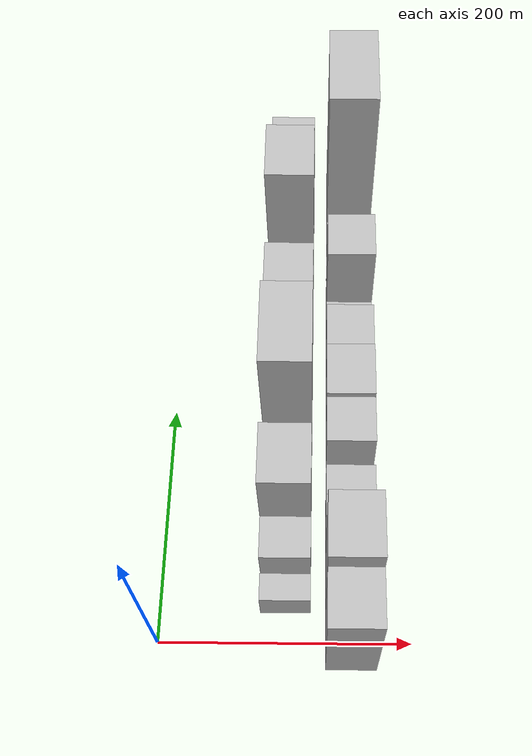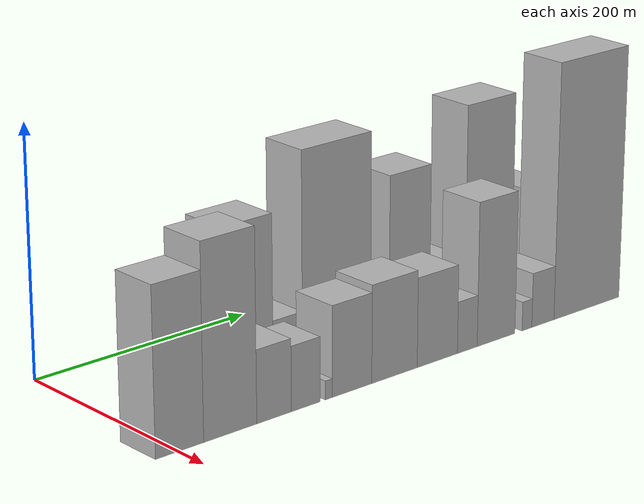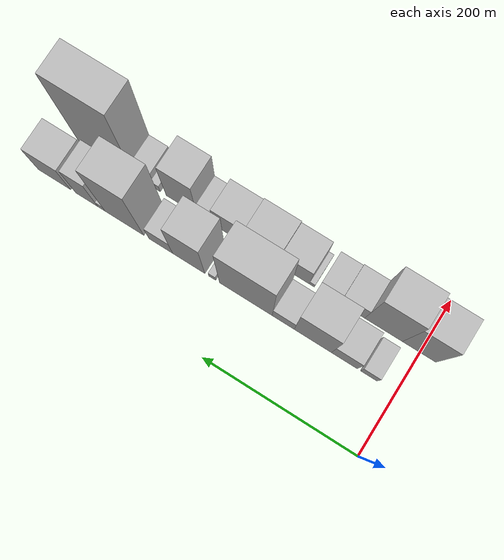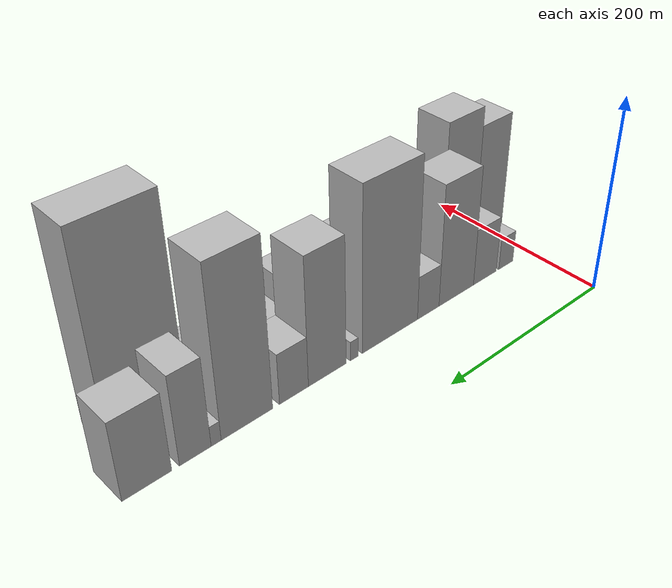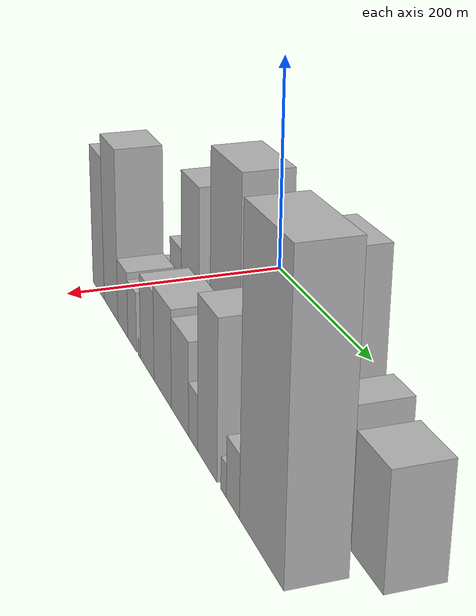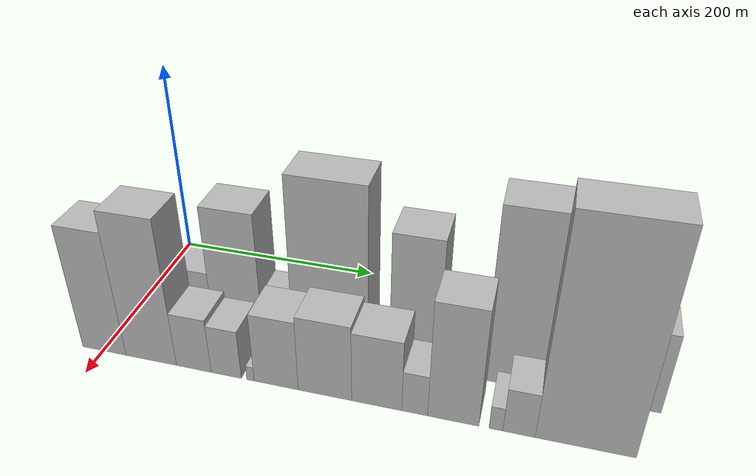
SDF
<sdf version="1.6">
 <world name="default">
  <model name="building_13">
   <static>1</static>
   <pose>100.0000 34.5965 0 0.000000 0.000000 0.000000</pose>
   <link name="link">
    <pose>0 0 18.00 0 0 0</pose>
    <collision name="collision"><geometry><box><size>40.0000 21.2553 36.0000</size></box></geometry></collision>
    <visual name="visual">
     <cast_shadows>0</cast_shadows>
     <geometry><box><size>40.0000 21.2553 36.0000</size></box></geometry>
     <material>
      <script>
       <uri>model://HANNAS_wall/materials/scripts</uri>
       <uri>model://HANNAS_wall/materials/textures</uri>
       <name>vrc/HANNAS_wall</name>
      </script>
     </material>
    </visual>
   </link>
  </model>
  <model name="building_14">
   <static>1</static>
   <pose>100.0000 65.7811 0 0.000000 0.000000 0.000000</pose>
   <link name="link">
    <pose>0 0 31.50 0 0 0</pose>
    <collision name="collision"><geometry><box><size>40.0000 33.1139 63.0000</size></box></geometry></collision>
    <visual name="visual">
     <cast_shadows>0</cast_shadows>
     <geometry><box><size>40.0000 33.1139 63.0000</size></box></geometry>
     <material>
      <script>
       <uri>model://HANNAS_wall/materials/scripts</uri>
       <uri>model://HANNAS_wall/materials/textures</uri>
       <name>vrc/HANNAS_wall</name>
      </script>
     </material>
    </visual>
   </link>
  </model>
  <model name="building_15">
   <static>1</static>
   <pose>100.0000 106.3190 0 0.000000 0.000000 0.000000</pose>
   <link name="link">
    <pose>0 0 66.00 0 0 0</pose>
    <collision name="collision"><geometry><box><size>40.0000 47.9619 132.0000</size></box></geometry></collision>
    <visual name="visual">
     <cast_shadows>0</cast_shadows>
     <geometry><box><size>40.0000 47.9619 132.0000</size></box></geometry>
     <material>
      <script>
       <uri>model://HANNAS_wall/materials/scripts</uri>
       <uri>model://HANNAS_wall/materials/textures</uri>
       <name>vrc/HANNAS_wall</name>
      </script>
     </material>
    </visual>
   </link>
  </model>
  <model name="building_16">
   <static>1</static>
   <pose>100.0000 144.6355 0 0.000000 0.000000 0.000000</pose>
   <link name="link">
    <pose>0 0 24.00 0 0 0</pose>
    <collision name="collision"><geometry><box><size>40.0000 28.6711 48.0000</size></box></geometry></collision>
    <visual name="visual">
     <cast_shadows>0</cast_shadows>
     <geometry><box><size>40.0000 28.6711 48.0000</size></box></geometry>
     <material>
      <script>
       <uri>model://HANNAS_wall/materials/scripts</uri>
       <uri>model://HANNAS_wall/materials/textures</uri>
       <name>vrc/HANNAS_wall</name>
      </script>
     </material>
    </visual>
   </link>
  </model>
  <model name="building_17">
   <static>1</static>
   <pose>100.0000 193.4795 0 0.000000 0.000000 0.000000</pose>
   <link name="link">
    <pose>0 0 87.00 0 0 0</pose>
    <collision name="collision"><geometry><box><size>40.0000 69.0169 174.0000</size></box></geometry></collision>
    <visual name="visual">
     <cast_shadows>0</cast_shadows>
     <geometry><box><size>40.0000 69.0169 174.0000</size></box></geometry>
     <material>
      <script>
       <uri>model://HANNAS_wall/materials/scripts</uri>
       <uri>model://HANNAS_wall/materials/textures</uri>
       <name>vrc/HANNAS_wall</name>
      </script>
     </material>
    </visual>
   </link>
  </model>
  <model name="building_18">
   <static>1</static>
   <pose>100.0000 237.6015 0 0.000000 0.000000 0.000000</pose>
   <link name="link">
    <pose>0 0 10.50 0 0 0</pose>
    <collision name="collision"><geometry><box><size>40.0000 9.2270 21.0000</size></box></geometry></collision>
    <visual name="visual">
     <cast_shadows>0</cast_shadows>
     <geometry><box><size>40.0000 9.2270 21.0000</size></box></geometry>
     <material>
      <script>
       <uri>model://HANNAS_wall/materials/scripts</uri>
       <uri>model://HANNAS_wall/materials/textures</uri>
       <name>vrc/HANNAS_wall</name>
      </script>
     </material>
    </visual>
   </link>
  </model>
  <model name="building_19">
   <static>1</static>
   <pose>100.0000 268.6588 0 0.000000 0.000000 0.000000</pose>
   <link name="link">
    <pose>0 0 67.50 0 0 0</pose>
    <collision name="collision"><geometry><box><size>40.0000 42.8875 135.0000</size></box></geometry></collision>
    <visual name="visual">
     <cast_shadows>0</cast_shadows>
     <geometry><box><size>40.0000 42.8875 135.0000</size></box></geometry>
     <material>
      <script>
       <uri>model://HANNAS_wall/materials/scripts</uri>
       <uri>model://HANNAS_wall/materials/textures</uri>
       <name>vrc/HANNAS_wall</name>
      </script>
     </material>
    </visual>
   </link>
  </model>
  <model name="building_20">
   <static>1</static>
   <pose>100.0000 305.8284 0 0.000000 0.000000 0.000000</pose>
   <link name="link">
    <pose>0 0 27.00 0 0 0</pose>
    <collision name="collision"><geometry><box><size>40.0000 31.4517 54.0000</size></box></geometry></collision>
    <visual name="visual">
     <cast_shadows>0</cast_shadows>
     <geometry><box><size>40.0000 31.4517 54.0000</size></box></geometry>
     <material>
      <script>
       <uri>model://HANNAS_wall/materials/scripts</uri>
       <uri>model://HANNAS_wall/materials/textures</uri>
       <name>vrc/HANNAS_wall</name>
      </script>
     </material>
    </visual>
   </link>
  </model>
  <model name="building_21">
   <static>1</static>
   <pose>100.0000 354.7186 0 0.000000 0.000000 0.000000</pose>
   <link name="link">
    <pose>0 0 87.00 0 0 0</pose>
    <collision name="collision"><geometry><box><size>40.0000 52.3286 174.0000</size></box></geometry></collision>
    <visual name="visual">
     <cast_shadows>0</cast_shadows>
     <geometry><box><size>40.0000 52.3286 174.0000</size></box></geometry>
     <material>
      <script>
       <uri>model://HANNAS_wall/materials/scripts</uri>
       <uri>model://HANNAS_wall/materials/textures</uri>
       <name>vrc/HANNAS_wall</name>
      </script>
     </material>
    </visual>
   </link>
  </model>
  <model name="building_22">
   <static>1</static>
   <pose>100.0000 385.7405 0 0.000000 0.000000 0.000000</pose>
   <link name="link">
    <pose>0 0 10.50 0 0 0</pose>
    <collision name="collision"><geometry><box><size>40.0000 9.7152 21.0000</size></box></geometry></collision>
    <visual name="visual">
     <cast_shadows>0</cast_shadows>
     <geometry><box><size>40.0000 9.7152 21.0000</size></box></geometry>
     <material>
      <script>
       <uri>model://HANNAS_wall/materials/scripts</uri>
       <uri>model://HANNAS_wall/materials/textures</uri>
       <name>vrc/HANNAS_wall</name>
      </script>
     </material>
    </visual>
   </link>
  </model>
  <model name="building_23">
   <static>1</static>
   <pose>100.0000 405.5661 0 0.000000 0.000000 0.000000</pose>
   <link name="link">
    <pose>0 0 46.50 0 0 0</pose>
    <collision name="collision"><geometry><box><size>40.0000 29.9361 93.0000</size></box></geometry></collision>
    <visual name="visual">
     <cast_shadows>0</cast_shadows>
     <geometry><box><size>40.0000 29.9361 93.0000</size></box></geometry>
     <material>
      <script>
       <uri>model://HANNAS_wall/materials/scripts</uri>
       <uri>model://HANNAS_wall/materials/textures</uri>
       <name>vrc/HANNAS_wall</name>
      </script>
     </material>
    </visual>
   </link>
  </model>
  <model name="building_24">
   <static>1</static>
   <pose>100.0000 449.7076 0 0.000000 0.000000 0.000000</pose>
   <link name="link">
    <pose>0 0 40.50 0 0 0</pose>
    <collision name="collision"><geometry><box><size>40.0000 44.3469 81.0000</size></box></geometry></collision>
    <visual name="visual">
     <cast_shadows>0</cast_shadows>
     <geometry><box><size>40.0000 44.3469 81.0000</size></box></geometry>
     <material>
      <script>
       <uri>model://HANNAS_wall/materials/scripts</uri>
       <uri>model://HANNAS_wall/materials/textures</uri>
       <name>vrc/HANNAS_wall</name>
      </script>
     </material>
    </visual>
   </link>
  </model>
  <model name="building_36">
   <static>1</static>
   <pose>152.0000 1.1253 0 0.000000 0.000000 0.000000</pose>
   <link name="link">
    <pose>0 0 64.50 0 0 0</pose>
    <collision name="collision"><geometry><box><size>40.0000 42.7068 129.0000</size></box></geometry></collision>
    <visual name="visual">
     <cast_shadows>0</cast_shadows>
     <geometry><box><size>40.0000 42.7068 129.0000</size></box></geometry>
     <material>
      <script>
       <uri>model://HANNAS_wall/materials/scripts</uri>
       <uri>model://HANNAS_wall/materials/textures</uri>
       <name>vrc/HANNAS_wall</name>
      </script>
     </material>
    </visual>
   </link>
  </model>
  <model name="building_37">
   <static>1</static>
   <pose>152.0000 46.7085 0 0.000000 0.000000 0.000000</pose>
   <link name="link">
    <pose>0 0 75.00 0 0 0</pose>
    <collision name="collision"><geometry><box><size>40.0000 48.4595 150.0000</size></box></geometry></collision>
    <visual name="visual">
     <cast_shadows>0</cast_shadows>
     <geometry><box><size>40.0000 48.4595 150.0000</size></box></geometry>
     <material>
      <script>
       <uri>model://HANNAS_wall/materials/scripts</uri>
       <uri>model://HANNAS_wall/materials/textures</uri>
       <name>vrc/HANNAS_wall</name>
      </script>
     </material>
    </visual>
   </link>
  </model>
  <model name="building_38">
   <static>1</static>
   <pose>152.0000 87.1796 0 0.000000 0.000000 0.000000</pose>
   <link name="link">
    <pose>0 0 28.50 0 0 0</pose>
    <collision name="collision"><geometry><box><size>40.0000 32.4826 57.0000</size></box></geometry></collision>
    <visual name="visual">
     <cast_shadows>0</cast_shadows>
     <geometry><box><size>40.0000 32.4826 57.0000</size></box></geometry>
     <material>
      <script>
       <uri>model://HANNAS_wall/materials/scripts</uri>
       <uri>model://HANNAS_wall/materials/textures</uri>
       <name>vrc/HANNAS_wall</name>
      </script>
     </material>
    </visual>
   </link>
  </model>
  <model name="building_39">
   <static>1</static>
   <pose>152.0000 117.2472 0 0.000000 0.000000 0.000000</pose>
   <link name="link">
    <pose>0 0 25.50 0 0 0</pose>
    <collision name="collision"><geometry><box><size>40.0000 27.6525 51.0000</size></box></geometry></collision>
    <visual name="visual">
     <cast_shadows>0</cast_shadows>
     <geometry><box><size>40.0000 27.6525 51.0000</size></box></geometry>
     <material>
      <script>
       <uri>model://HANNAS_wall/materials/scripts</uri>
       <uri>model://HANNAS_wall/materials/textures</uri>
       <name>vrc/HANNAS_wall</name>
      </script>
     </material>
    </visual>
   </link>
  </model>
  <model name="building_40">
   <static>1</static>
   <pose>152.0000 139.3779 0 0.000000 0.000000 0.000000</pose>
   <link name="link">
    <pose>0 0 7.50 0 0 0</pose>
    <collision name="collision"><geometry><box><size>40.0000 6.6089 15.0000</size></box></geometry></collision>
    <visual name="visual">
     <cast_shadows>0</cast_shadows>
     <geometry><box><size>40.0000 6.6089 15.0000</size></box></geometry>
     <material>
      <script>
       <uri>model://HANNAS_wall/materials/scripts</uri>
       <uri>model://HANNAS_wall/materials/textures</uri>
       <name>vrc/HANNAS_wall</name>
      </script>
     </material>
    </visual>
   </link>
  </model>
  <model name="building_41">
   <static>1</static>
   <pose>152.0000 162.2737 0 0.000000 0.000000 0.000000</pose>
   <link name="link">
    <pose>0 0 36.00 0 0 0</pose>
    <collision name="collision"><geometry><box><size>40.0000 39.1828 72.0000</size></box></geometry></collision>
    <visual name="visual">
     <cast_shadows>0</cast_shadows>
     <geometry><box><size>40.0000 39.1828 72.0000</size></box></geometry>
     <material>
      <script>
       <uri>model://HANNAS_wall/materials/scripts</uri>
       <uri>model://HANNAS_wall/materials/textures</uri>
       <name>vrc/HANNAS_wall</name>
      </script>
     </material>
    </visual>
   </link>
  </model>
  <model name="building_42">
   <static>1</static>
   <pose>152.0000 204.9582 0 0.000000 0.000000 0.000000</pose>
   <link name="link">
    <pose>0 0 39.00 0 0 0</pose>
    <collision name="collision"><geometry><box><size>40.0000 46.1862 78.0000</size></box></geometry></collision>
    <visual name="visual">
     <cast_shadows>0</cast_shadows>
     <geometry><box><size>40.0000 46.1862 78.0000</size></box></geometry>
     <material>
      <script>
       <uri>model://HANNAS_wall/materials/scripts</uri>
       <uri>model://HANNAS_wall/materials/textures</uri>
       <name>vrc/HANNAS_wall</name>
      </script>
     </material>
    </visual>
   </link>
  </model>
  <model name="building_43">
   <static>1</static>
   <pose>152.0000 249.0861 0 0.000000 0.000000 0.000000</pose>
   <link name="link">
    <pose>0 0 36.00 0 0 0</pose>
    <collision name="collision"><geometry><box><size>40.0000 42.0696 72.0000</size></box></geometry></collision>
    <visual name="visual">
     <cast_shadows>0</cast_shadows>
     <geometry><box><size>40.0000 42.0696 72.0000</size></box></geometry>
     <material>
      <script>
       <uri>model://HANNAS_wall/materials/scripts</uri>
       <uri>model://HANNAS_wall/materials/textures</uri>
       <name>vrc/HANNAS_wall</name>
      </script>
     </material>
    </visual>
   </link>
  </model>
  <model name="building_44">
   <static>1</static>
   <pose>152.0000 280.6875 0 0.000000 0.000000 0.000000</pose>
   <link name="link">
    <pose>0 0 21.00 0 0 0</pose>
    <collision name="collision"><geometry><box><size>40.0000 21.1331 42.0000</size></box></geometry></collision>
    <visual name="visual">
     <cast_shadows>0</cast_shadows>
     <geometry><box><size>40.0000 21.1331 42.0000</size></box></geometry>
     <material>
      <script>
       <uri>model://HANNAS_wall/materials/scripts</uri>
       <uri>model://HANNAS_wall/materials/textures</uri>
       <name>vrc/HANNAS_wall</name>
      </script>
     </material>
    </visual>
   </link>
  </model>
  <model name="building_45">
   <static>1</static>
   <pose>152.0000 311.8316 0 0.000000 0.000000 0.000000</pose>
   <link name="link">
    <pose>0 0 58.50 0 0 0</pose>
    <collision name="collision"><geometry><box><size>40.0000 41.1552 117.0000</size></box></geometry></collision>
    <visual name="visual">
     <cast_shadows>0</cast_shadows>
     <geometry><box><size>40.0000 41.1552 117.0000</size></box></geometry>
     <material>
      <script>
       <uri>model://HANNAS_wall/materials/scripts</uri>
       <uri>model://HANNAS_wall/materials/textures</uri>
       <name>vrc/HANNAS_wall</name>
      </script>
     </material>
    </visual>
   </link>
  </model>
  <model name="building_46">
   <static>1</static>
   <pose>152.0000 345.8170 0 0.000000 0.000000 0.000000</pose>
   <link name="link">
    <pose>0 0 12.00 0 0 0</pose>
    <collision name="collision"><geometry><box><size>40.0000 10.8155 24.0000</size></box></geometry></collision>
    <visual name="visual">
     <cast_shadows>0</cast_shadows>
     <geometry><box><size>40.0000 10.8155 24.0000</size></box></geometry>
     <material>
      <script>
       <uri>model://HANNAS_wall/materials/scripts</uri>
       <uri>model://HANNAS_wall/materials/textures</uri>
       <name>vrc/HANNAS_wall</name>
      </script>
     </material>
    </visual>
   </link>
  </model>
  <model name="building_47">
   <static>1</static>
   <pose>152.0000 363.7173 0 0.000000 0.000000 0.000000</pose>
   <link name="link">
    <pose>0 0 22.50 0 0 0</pose>
    <collision name="collision"><geometry><box><size>40.0000 24.9851 45.0000</size></box></geometry></collision>
    <visual name="visual">
     <cast_shadows>0</cast_shadows>
     <geometry><box><size>40.0000 24.9851 45.0000</size></box></geometry>
     <material>
      <script>
       <uri>model://HANNAS_wall/materials/scripts</uri>
       <uri>model://HANNAS_wall/materials/textures</uri>
       <name>vrc/HANNAS_wall</name>
      </script>
     </material>
    </visual>
   </link>
  </model>
  <model name="building_48">
   <static>1</static>
   <pose>152.0000 413.9263 0 0.000000 0.000000 0.000000</pose>
   <link name="link">
    <pose>0 0 105.00 0 0 0</pose>
    <collision name="collision"><geometry><box><size>40.0000 75.4330 210.0000</size></box></geometry></collision>
    <visual name="visual">
     <cast_shadows>0</cast_shadows>
     <geometry><box><size>40.0000 75.4330 210.0000</size></box></geometry>
     <material>
      <script>
       <uri>model://HANNAS_wall/materials/scripts</uri>
       <uri>model://HANNAS_wall/materials/textures</uri>
       <name>vrc/HANNAS_wall</name>
      </script>
     </material>
    </visual>
   </link>
  </model>
 </world>
</sdf>
